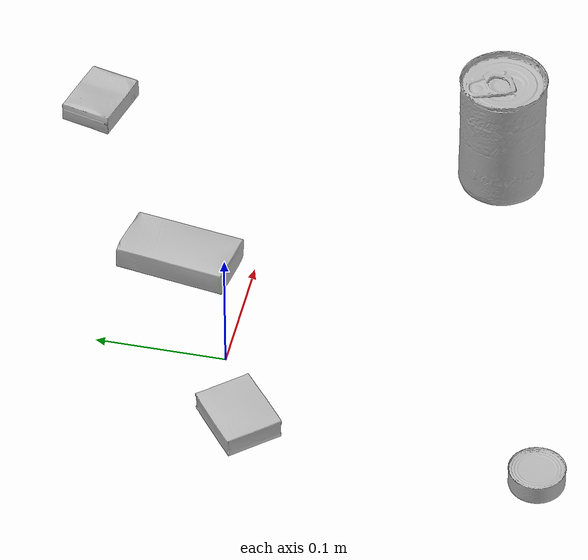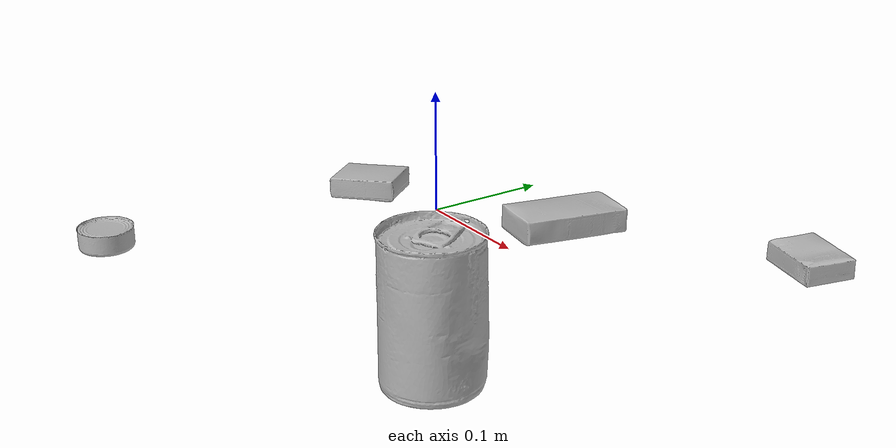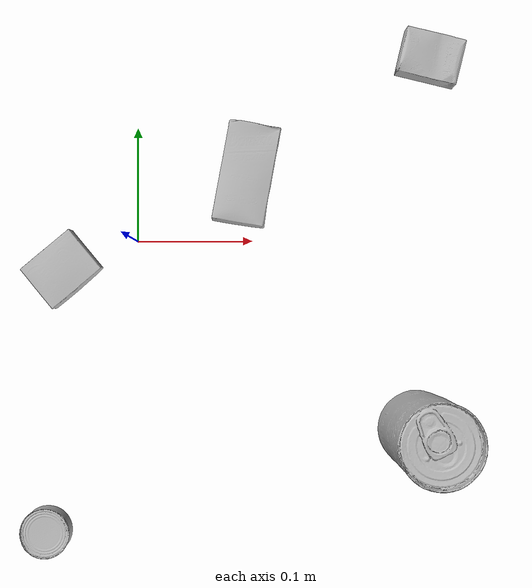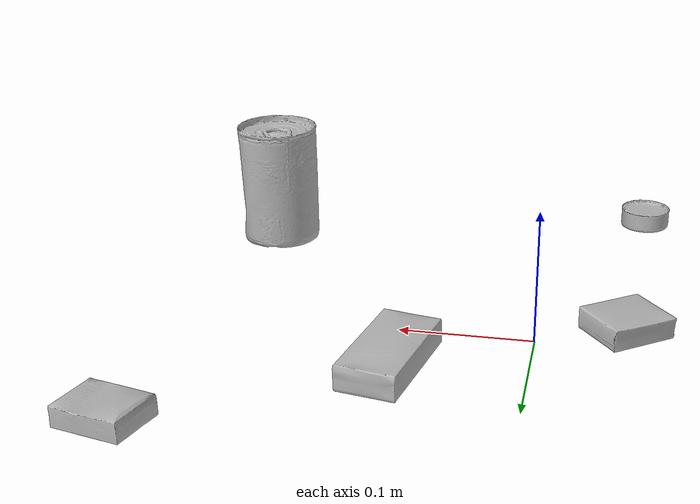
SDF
<sdf version="1.4">
  <world name="default">
    <light name="light1" type="point">
      <pose>0 0 1 0 0 0</pose>
      <diffuse>3 3 3 1</diffuse>
      <specular>3 3 3 1</specular>
    </light>
    <light name="light2" type="point">
      <pose>0 0.5 2 0 0 0</pose>
      <diffuse>1 1 1 1</diffuse>
      <specular>1 1 1 1</specular>
    </light>
    <light name="light3" type="point">
      <pose>0 0.5 2 0 0 0</pose>
      <diffuse>3 3 3 1</diffuse>
      <specular>3 3 3 1</specular>
    </light>
    <scene>
      <ambient>0.7 0.7 0.7</ambient>
    </scene>
    <model name="box1">
      <link name="link_box1">
        <collision name="default">
          <geometry>
            <mesh>
              <uri>model://cracker_box/collision_meshes/collision.obj</uri>
              <scale>0.25 0.25 0.25</scale>
            </mesh>
          </geometry>
          <surface>
            <friction>
              <ode>
                <mu>0.5</mu>
                <mu2>0.5</mu2>
              </ode>
            </friction>
          <contact>
        <ode>
            <max_vel>0</max_vel>
            <min_depth>0.0001</min_depth>
            <kp>1e8</kp>
        </ode>
    </contact></surface>
        </collision>
        <visual name="default">
          <geometry>
            <mesh>
              <uri>model://cracker_box/visual_meshes/visual.dae</uri>
              <scale>0.25 0.25 0.25</scale>
            </mesh>
          </geometry>
        </visual>
        <inertial>
          <mass>0.029061755165457726</mass>
          <pose>0.00023660456645302474 6.358561950037256e-05 -0.0004257383698131889 -0.0003162077745192934 -0.011106489600167671 0.002546795235645709</pose>
          <inertia>
            <ixx>4.620008e-06</ixx>
            <iyy>7.6285405e-06</iyy>
            <izz>1.0886628e-05</izz>
            <ixy>0</ixy>
            <ixz>0</ixz>
            <iyz>0</iyz>
          </inertia>
        </inertial>
      </link>
      <pose>0.2556481659412384 0.1593368500471115 0.009096027351915836 -0.014050359637956051 -0.0050168188146434015 2.9005520012406225</pose>
    </model>
    <model name="box2">
      <link name="link_box2">
        <collision name="default">
          <geometry>
            <mesh>
              <uri>model://sugar_box/collision_meshes/collision.obj</uri>
              <scale>0.5 0.5 0.5</scale>
            </mesh>
          </geometry>
          <surface>
            <friction>
              <ode>
                <mu>0.5</mu>
                <mu2>0.5</mu2>
              </ode>
            </friction>
          <contact>
        <ode>
            <max_vel>0</max_vel>
            <min_depth>0.0001</min_depth>
            <kp>1e8</kp>
        </ode>
    </contact></surface>
        </collision>
        <visual name="default">
          <geometry>
            <mesh>
              <uri>model://sugar_box/visual_meshes/visual.dae</uri>
              <scale>0.5 0.5 0.5</scale>
            </mesh>
          </geometry>
        </visual>
        <inertial>
          <mass>0.08909860998392105</mass>
          <pose>0.0005171863595023751 1.924554817378521e-05 -0.00018182402709499002 -0.00040462606756407727 0.0010506635218583888 0.002615378789044619</pose>
          <inertia>
            <ixx>1.8559176e-05</ixx>
            <iyy>5.9987076e-05</iyy>
            <izz>7.181169e-05</izz>
            <ixy>0</ixy>
            <ixz>0</ixz>
            <iyz>0</iyz>
          </inertia>
        </inertial>
      </link>
      <pose>0.09508904814720154 0.057447776198387146 0.011399299837648869 0.0007752329255104058 -0.023432587545880325 -1.7581058223348505</pose>
    </model>
    <model name="box3">
      <link name="link_box3">
        <collision name="default">
          <geometry>
            <mesh>
              <uri>model://pudding_box/collision_meshes/collision.obj</uri>
              <scale>0.5 0.5 0.5</scale>
            </mesh>
          </geometry>
          <surface>
            <friction>
              <ode>
                <mu>0.5</mu>
                <mu2>0.5</mu2>
              </ode>
            </friction>
          <contact>
        <ode>
            <max_vel>0</max_vel>
            <min_depth>0.0001</min_depth>
            <kp>1e8</kp>
        </ode>
    </contact></surface>
        </collision>
        <visual name="default">
          <geometry>
            <mesh>
              <uri>model://pudding_box/visual_meshes/visual.dae</uri>
              <scale>0.5 0.5 0.5</scale>
            </mesh>
          </geometry>
        </visual>
        <inertial>
          <mass>0.058397307991981506</mass>
          <pose>0.00024474109522998333 0.000403394311433658 -0.0002594413817860186 0.005213099939270767 -0.006603797768571226 0.020079825168092046</pose>
          <inertia>
            <ixx>1.650379e-05</ixx>
            <iyy>1.1103868e-05</iyy>
            <izz>2.437216e-05</izz>
            <ixy>0</ixy>
            <ixz>0</ixz>
            <iyz>0</iyz>
          </inertia>
        </inertial>
      </link>
      <pose>-0.06465214490890503 -0.024427834898233414 0.009862903505563736 0.02234848018787817 -0.01139172238977598 -0.8853800082614228</pose>
    </model>
    <model name="can1">
      <link name="link_can1">
        <collision name="default">
          <geometry>
            <mesh>
              <uri>model://tuna_fish_can/collision_meshes/collision.obj</uri>
              <scale>0.5 0.5 0.5</scale>
            </mesh>
          </geometry>
          <surface>
            <friction>
              <ode>
                <mu>0.5</mu>
                <mu2>0.5</mu2>
              </ode>
            </friction>
          <contact>
        <ode>
            <max_vel>0</max_vel>
            <min_depth>0.0001</min_depth>
            <kp>1e8</kp>
        </ode>
    </contact></surface>
        </collision>
        <visual name="default">
          <geometry>
            <mesh>
              <uri>model://tuna_fish_can/visual_meshes/visual.dae</uri>
              <scale>0.5 0.5 0.5</scale>
            </mesh>
          </geometry>
        </visual>
        <inertial>
          <mass>0.024247437715530396</mass>
          <pose>-2.0361860151751898e-05 -7.256063781824196e-06 -0.000526902440469712 -0.0017944785229743307 0.0001716120442354053 0.2405371667019961</pose>
          <inertia>
            <ixx>3.2782896e-06</ixx>
            <iyy>3.2646258e-06</iyy>
            <izz>5.609621e-06</izz>
            <ixy>0</ixy>
            <ixz>0</ixz>
            <iyz>0</iyz>
          </inertia>
        </inertial>
      </link>
      <pose>-0.07838795334100723 -0.25056013464927673 0.008519995957612991 -1.635630501613125e-08 -1.2162784509777004e-08 -1.195964271059508</pose>
    </model>
    <model name="can2">
      <link name="link_can2">
        <collision name="default">
          <geometry>
            <mesh>
              <uri>model://tomato_soup_can/collision_meshes/collision.obj</uri>
              <scale>1.0 1.0 1.0</scale>
            </mesh>
          </geometry>
          <surface>
            <friction>
              <ode>
                <mu>0.5</mu>
                <mu2>0.5</mu2>
              </ode>
            </friction>
          <contact>
        <ode>
            <max_vel>0</max_vel>
            <min_depth>0.0001</min_depth>
            <kp>1e8</kp>
        </ode>
    </contact></surface>
        </collision>
        <visual name="default">
          <geometry>
            <mesh>
              <uri>model://tomato_soup_can/visual_meshes/visual.dae</uri>
              <scale>1.0 1.0 1.0</scale>
            </mesh>
          </geometry>
        </visual>
        <inertial>
          <mass>0.44329848885536194</mass>
          <pose>0.0001265227037947625 0.00010805520287249237 -0.0017973989015445113 0.007020066893531886 0.00042299576578658417 -0.009903435969571123</pose>
          <inertia>
            <ixx>0.00048603912</ixx>
            <iyy>0.0004832301</iyy>
            <izz>0.00025190957</izz>
            <ixy>0</ixy>
            <ixz>0</ixz>
            <iyz>0</iyz>
          </inertia>
        </inertial>
      </link>
      <pose>0.24157336354255676 -0.1633417308330536 0.051274023950099945 -6.223616751573464e-07 -7.670532562434577e-07 -2.970025509875331</pose>
    </model>
  <physics type="ode">
      <max_contacts>50</max_contacts>
      <ode>
        <solver>
          <type>quick</type>
          <iters>75</iters>
        </solver>
        <constraints>
          <contact_max_correcting_vel>0</contact_max_correcting_vel>
          <contact_surface_layer>0</contact_surface_layer>
        </constraints>
      </ode>
    </physics></world>
</sdf>
